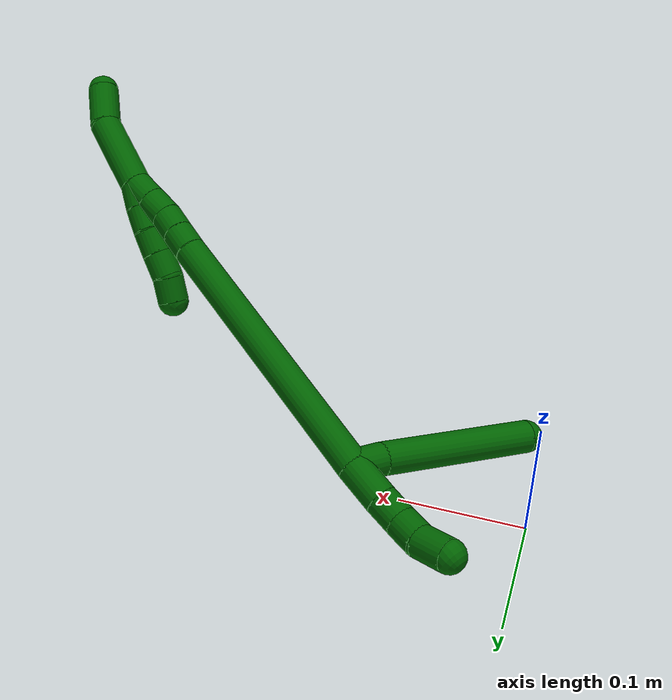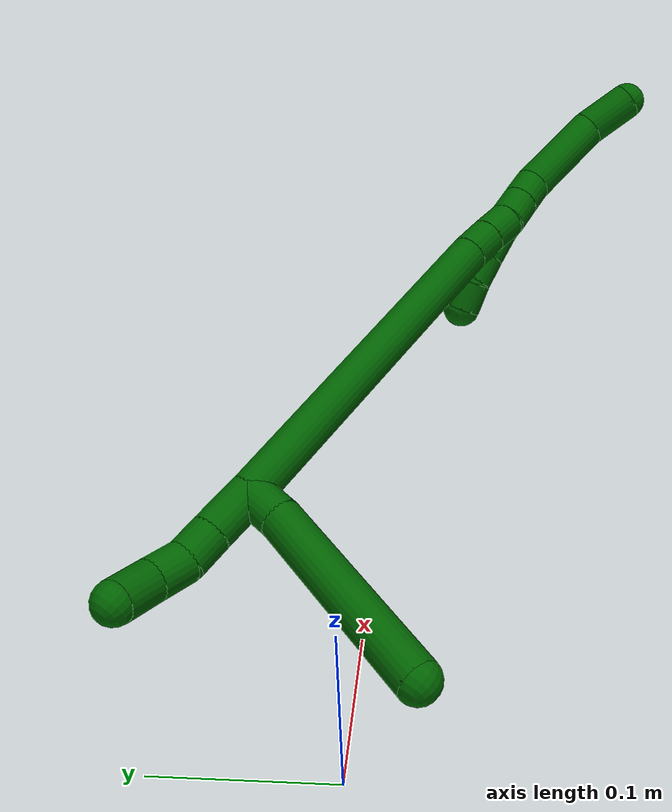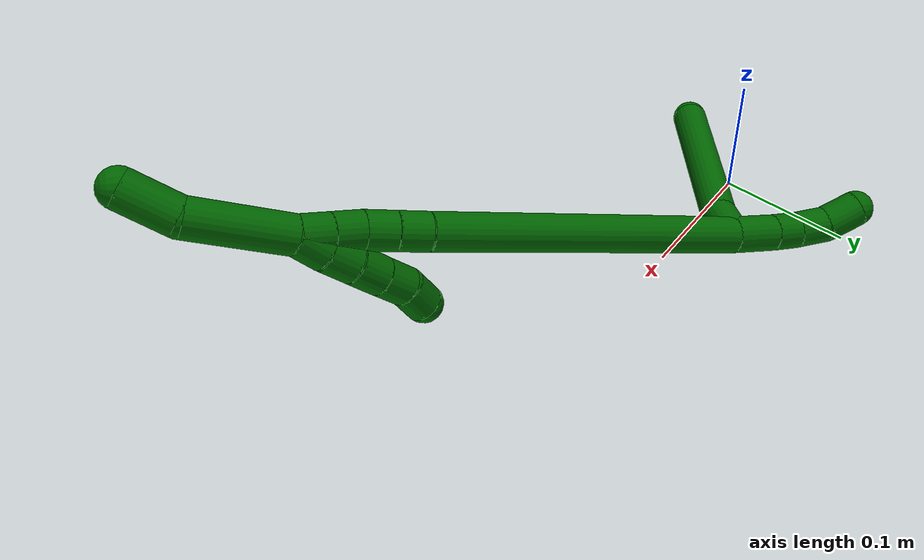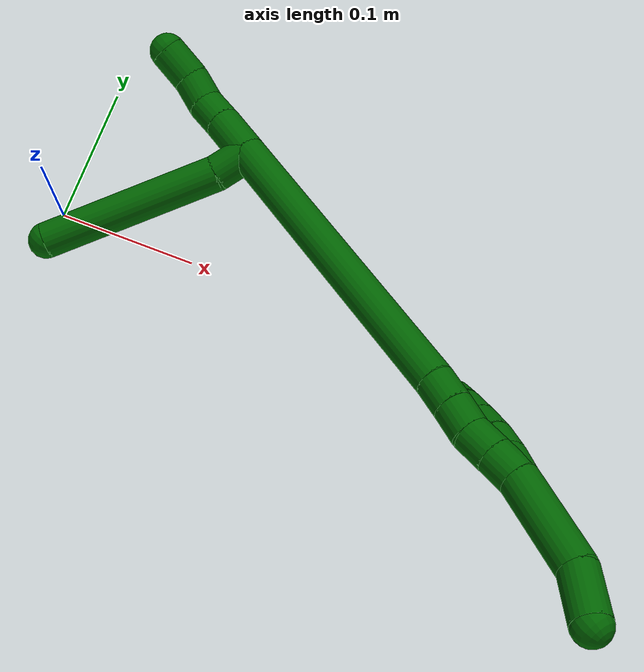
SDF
<sdf version="1.7">
 <world name="default">
  <model name="6">
   <static>0</static>
   <link name="6">
    <collision name="collision-cylinder-e_1_2_8">
     <pose>-0.005557 -0.011158 -0.002258 1.77045 -0.454118 -0.550608</pose>
     <geometry><cylinder><radius>0.0125</radius><length>0.025335</length></cylinder></geometry>
     <surface>
      <friction><ode><mu>1.16</mu><mu2>1.16</mu2><slip1>0</slip1><slip2>0</slip2></ode></friction>
      <contact><ode><kp>1e+06</kp><kd>1</kd><max_vel>0</max_vel><min_depth>0.001</min_depth></ode></contact>
     </surface>
    </collision>
    <visual name="visual-cylinder-e_1_2_8">
     <pose>-0.005557 -0.011158 -0.002258 1.77045 -0.454118 -0.550608</pose>
     <geometry><cylinder><radius>0.0125</radius><length>0.025335</length></cylinder></geometry>
     <material><ambient>0 0.392157 0.003922 1</ambient></material>
    </visual>
    <collision name="collision-cylinder-e_2_8_6">
     <pose>-0.042698 -0.072047 -0.024875 1.95937 -0.531354 -0.770352</pose>
     <geometry><cylinder><radius>0.0125</radius><length>0.124665</length></cylinder></geometry>
     <surface>
      <friction><ode><mu>1.16</mu><mu2>1.16</mu2><slip1>0</slip1><slip2>0</slip2></ode></friction>
      <contact><ode><kp>1e+06</kp><kd>1</kd><max_vel>0</max_vel><min_depth>0.001</min_depth></ode></contact>
     </surface>
    </collision>
    <visual name="visual-cylinder-e_2_8_6">
     <pose>-0.042698 -0.072047 -0.024875 1.95937 -0.531354 -0.770352</pose>
     <geometry><cylinder><radius>0.0125</radius><length>0.124665</length></cylinder></geometry>
     <material><ambient>0 0.392157 0.003922 1</ambient></material>
    </visual>
    <collision name="collision-cylinder-e_1_2_9">
     <pose>-0.000419 0.000905 -0.01598 -3.08504 -0.026201 0.867616</pose>
     <geometry><cylinder><radius>0.0125</radius><length>0.032022</length></cylinder></geometry>
     <surface>
      <friction><ode><mu>1.16</mu><mu2>1.16</mu2><slip1>0</slip1><slip2>0</slip2></ode></friction>
      <contact><ode><kp>1e+06</kp><kd>1</kd><max_vel>0</max_vel><min_depth>0.001</min_depth></ode></contact>
     </surface>
    </collision>
    <visual name="visual-cylinder-e_1_2_9">
     <pose>-0.000419 0.000905 -0.01598 -3.08504 -0.026201 0.867616</pose>
     <geometry><cylinder><radius>0.0125</radius><length>0.032022</length></cylinder></geometry>
     <material><ambient>0 0.392157 0.003922 1</ambient></material>
    </visual>
    <collision name="collision-cylinder-e_2_9_10">
     <pose>-0.001538 0.002211 -0.042366 -3.10301 -0.066979 2.09656</pose>
     <geometry><cylinder><radius>0.0125</radius><length>0.020875</length></cylinder></geometry>
     <surface>
      <friction><ode><mu>1.16</mu><mu2>1.16</mu2><slip1>0</slip1><slip2>0</slip2></ode></friction>
      <contact><ode><kp>1e+06</kp><kd>1</kd><max_vel>0</max_vel><min_depth>0.001</min_depth></ode></contact>
     </surface>
    </collision>
    <visual name="visual-cylinder-e_2_9_10">
     <pose>-0.001538 0.002211 -0.042366 -3.10301 -0.066979 2.09656</pose>
     <geometry><cylinder><radius>0.0125</radius><length>0.020875</length></cylinder></geometry>
     <material><ambient>0 0.392157 0.003922 1</ambient></material>
    </visual>
    <collision name="collision-cylinder-e_3_10_11">
     <pose>-0.004413 0.005872 -0.062899 -2.83021 -0.201852 1.14598</pose>
     <geometry><cylinder><radius>0.0125</radius><length>0.021717</length></cylinder></geometry>
     <surface>
      <friction><ode><mu>1.16</mu><mu2>1.16</mu2><slip1>0</slip1><slip2>0</slip2></ode></friction>
      <contact><ode><kp>1e+06</kp><kd>1</kd><max_vel>0</max_vel><min_depth>0.001</min_depth></ode></contact>
     </surface>
    </collision>
    <visual name="visual-cylinder-e_3_10_11">
     <pose>-0.004413 0.005872 -0.062899 -2.83021 -0.201852 1.14598</pose>
     <geometry><cylinder><radius>0.0125</radius><length>0.021717</length></cylinder></geometry>
     <material><ambient>0 0.392157 0.003922 1</ambient></material>
    </visual>
    <collision name="collision-cylinder-e_4_11_5">
     <pose>-0.012327 0.012059 -0.083963 -2.88006 -0.469014 2.13512</pose>
     <geometry><cylinder><radius>0.0125</radius><length>0.025386</length></cylinder></geometry>
     <surface>
      <friction><ode><mu>1.16</mu><mu2>1.16</mu2><slip1>0</slip1><slip2>0</slip2></ode></friction>
      <contact><ode><kp>1e+06</kp><kd>1</kd><max_vel>0</max_vel><min_depth>0.001</min_depth></ode></contact>
     </surface>
    </collision>
    <visual name="visual-cylinder-e_4_11_5">
     <pose>-0.012327 0.012059 -0.083963 -2.88006 -0.469014 2.13512</pose>
     <geometry><cylinder><radius>0.0125</radius><length>0.025386</length></cylinder></geometry>
     <material><ambient>0 0.392157 0.003922 1</ambient></material>
    </visual>
    <collision name="collision-cylinder-e_1_2_12">
     <pose>-0.003746 -0.003416 0.109653 0.031142 -0.034131 -0.000532</pose>
     <geometry><cylinder><radius>0.0125</radius><length>0.219539</length></cylinder></geometry>
     <surface>
      <friction><ode><mu>1.16</mu><mu2>1.16</mu2><slip1>0</slip1><slip2>0</slip2></ode></friction>
      <contact><ode><kp>1e+06</kp><kd>1</kd><max_vel>0</max_vel><min_depth>0.001</min_depth></ode></contact>
     </surface>
    </collision>
    <visual name="visual-cylinder-e_1_2_12">
     <pose>-0.003746 -0.003416 0.109653 0.031142 -0.034131 -0.000532</pose>
     <geometry><cylinder><radius>0.0125</radius><length>0.219539</length></cylinder></geometry>
     <material><ambient>0 0.392157 0.003922 1</ambient></material>
    </visual>
    <collision name="collision-cylinder-e_2_12_13">
     <pose>-0.007861 -0.007866 0.229323 0.102896 -0.036681 -0.001889</pose>
     <geometry><cylinder><radius>0.0125</radius><length>0.020155</length></cylinder></geometry>
     <surface>
      <friction><ode><mu>1.16</mu><mu2>1.16</mu2><slip1>0</slip1><slip2>0</slip2></ode></friction>
      <contact><ode><kp>1e+06</kp><kd>1</kd><max_vel>0</max_vel><min_depth>0.001</min_depth></ode></contact>
     </surface>
    </collision>
    <visual name="visual-cylinder-e_2_12_13">
     <pose>-0.007861 -0.007866 0.229323 0.102896 -0.036681 -0.001889</pose>
     <geometry><cylinder><radius>0.0125</radius><length>0.020155</length></cylinder></geometry>
     <material><ambient>0 0.392157 0.003922 1</ambient></material>
    </visual>
    <collision name="collision-cylinder-e_3_13_14">
     <pose>-0.008582 -0.01025 0.249343 0.134095 -0.034756 -0.002334</pose>
     <geometry><cylinder><radius>0.0125</radius><length>0.0202</length></cylinder></geometry>
     <surface>
      <friction><ode><mu>1.16</mu><mu2>1.16</mu2><slip1>0</slip1><slip2>0</slip2></ode></friction>
      <contact><ode><kp>1e+06</kp><kd>1</kd><max_vel>0</max_vel><min_depth>0.001</min_depth></ode></contact>
     </surface>
    </collision>
    <visual name="visual-cylinder-e_3_13_14">
     <pose>-0.008582 -0.01025 0.249343 0.134095 -0.034756 -0.002334</pose>
     <geometry><cylinder><radius>0.0125</radius><length>0.0202</length></cylinder></geometry>
     <material><ambient>0 0.392157 0.003922 1</ambient></material>
    </visual>
    <collision name="collision-cylinder-e_4_14_15">
     <pose>-0.008544 -0.010951 0.269357 -0.064666 0.038778 -0.001254</pose>
     <geometry><cylinder><radius>0.0125</radius><length>0.02008</length></cylinder></geometry>
     <surface>
      <friction><ode><mu>1.16</mu><mu2>1.16</mu2><slip1>0</slip1><slip2>0</slip2></ode></friction>
      <contact><ode><kp>1e+06</kp><kd>1</kd><max_vel>0</max_vel><min_depth>0.001</min_depth></ode></contact>
     </surface>
    </collision>
    <visual name="visual-cylinder-e_4_14_15">
     <pose>-0.008544 -0.010951 0.269357 -0.064666 0.038778 -0.001254</pose>
     <geometry><cylinder><radius>0.0125</radius><length>0.02008</length></cylinder></geometry>
     <material><ambient>0 0.392157 0.003922 1</ambient></material>
    </visual>
    <collision name="collision-cylinder-e_5_15_1">
     <pose>-0.007781 -0.009724 0.289358 -0.057863 0.037307 -0.00108</pose>
     <geometry><cylinder><radius>0.0125</radius><length>0.020027</length></cylinder></geometry>
     <surface>
      <friction><ode><mu>1.16</mu><mu2>1.16</mu2><slip1>0</slip1><slip2>0</slip2></ode></friction>
      <contact><ode><kp>1e+06</kp><kd>1</kd><max_vel>0</max_vel><min_depth>0.001</min_depth></ode></contact>
     </surface>
    </collision>
    <visual name="visual-cylinder-e_5_15_1">
     <pose>-0.007781 -0.009724 0.289358 -0.057863 0.037307 -0.00108</pose>
     <geometry><cylinder><radius>0.0125</radius><length>0.020027</length></cylinder></geometry>
     <material><ambient>0 0.392157 0.003922 1</ambient></material>
    </visual>
    <collision name="collision-cylinder-e_1_1_16">
     <pose>-0.013048 -0.011498 0.331225 0.073656 -0.174678 -0.006452</pose>
     <geometry><cylinder><radius>0.0125</radius><length>0.064916</length></cylinder></geometry>
     <surface>
      <friction><ode><mu>1.16</mu><mu2>1.16</mu2><slip1>0</slip1><slip2>0</slip2></ode></friction>
      <contact><ode><kp>1e+06</kp><kd>1</kd><max_vel>0</max_vel><min_depth>0.001</min_depth></ode></contact>
     </surface>
    </collision>
    <visual name="visual-cylinder-e_1_1_16">
     <pose>-0.013048 -0.011498 0.331225 0.073656 -0.174678 -0.006452</pose>
     <geometry><cylinder><radius>0.0125</radius><length>0.064916</length></cylinder></geometry>
     <material><ambient>0 0.392157 0.003922 1</ambient></material>
    </visual>
    <collision name="collision-cylinder-e_2_16_4">
     <pose>-0.026373 -0.018254 0.378245 0.283055 -0.453403 -0.065707</pose>
     <geometry><cylinder><radius>0.0125</radius><length>0.035084</length></cylinder></geometry>
     <surface>
      <friction><ode><mu>1.16</mu><mu2>1.16</mu2><slip1>0</slip1><slip2>0</slip2></ode></friction>
      <contact><ode><kp>1e+06</kp><kd>1</kd><max_vel>0</max_vel><min_depth>0.001</min_depth></ode></contact>
     </surface>
    </collision>
    <visual name="visual-cylinder-e_2_16_4">
     <pose>-0.026373 -0.018254 0.378245 0.283055 -0.453403 -0.065707</pose>
     <geometry><cylinder><radius>0.0125</radius><length>0.035084</length></cylinder></geometry>
     <material><ambient>0 0.392157 0.003922 1</ambient></material>
    </visual>
    <collision name="collision-cylinder-e_1_1_17">
     <pose>-0.00241 -0.009706 0.290704 3.0769 0.523277 2.90109</pose>
     <geometry><cylinder><radius>0.0125</radius><length>0.02</length></cylinder></geometry>
     <surface>
      <friction><ode><mu>1.16</mu><mu2>1.16</mu2><slip1>0</slip1><slip2>0</slip2></ode></friction>
      <contact><ode><kp>1e+06</kp><kd>1</kd><max_vel>0</max_vel><min_depth>0.001</min_depth></ode></contact>
     </surface>
    </collision>
    <visual name="visual-cylinder-e_1_1_17">
     <pose>-0.00241 -0.009706 0.290704 3.0769 0.523277 2.90109</pose>
     <geometry><cylinder><radius>0.0125</radius><length>0.02</length></cylinder></geometry>
     <material><ambient>0 0.392157 0.003922 1</ambient></material>
    </visual>
    <collision name="collision-cylinder-e_2_17_18">
     <pose>0.006822 -0.011154 0.273045 3.0434 0.437341 2.70638</pose>
     <geometry><cylinder><radius>0.0125</radius><length>0.02</length></cylinder></geometry>
     <surface>
      <friction><ode><mu>1.16</mu><mu2>1.16</mu2><slip1>0</slip1><slip2>0</slip2></ode></friction>
      <contact><ode><kp>1e+06</kp><kd>1</kd><max_vel>0</max_vel><min_depth>0.001</min_depth></ode></contact>
     </surface>
    </collision>
    <visual name="visual-cylinder-e_2_17_18">
     <pose>0.006822 -0.011154 0.273045 3.0434 0.437341 2.70638</pose>
     <geometry><cylinder><radius>0.0125</radius><length>0.02</length></cylinder></geometry>
     <material><ambient>0 0.392157 0.003922 1</ambient></material>
    </visual>
    <collision name="collision-cylinder-e_3_18_19">
     <pose>0.015232 -0.013909 0.255137 2.93461 0.43057 2.25476</pose>
     <geometry><cylinder><radius>0.0125</radius><length>0.02</length></cylinder></geometry>
     <surface>
      <friction><ode><mu>1.16</mu><mu2>1.16</mu2><slip1>0</slip1><slip2>0</slip2></ode></friction>
      <contact><ode><kp>1e+06</kp><kd>1</kd><max_vel>0</max_vel><min_depth>0.001</min_depth></ode></contact>
     </surface>
    </collision>
    <visual name="visual-cylinder-e_3_18_19">
     <pose>0.015232 -0.013909 0.255137 2.93461 0.43057 2.25476</pose>
     <geometry><cylinder><radius>0.0125</radius><length>0.02</length></cylinder></geometry>
     <material><ambient>0 0.392157 0.003922 1</ambient></material>
    </visual>
    <collision name="collision-cylinder-e_4_19_20">
     <pose>0.023446 -0.017896 0.237345 2.90775 0.415994 2.12591</pose>
     <geometry><cylinder><radius>0.0125</radius><length>0.02</length></cylinder></geometry>
     <surface>
      <friction><ode><mu>1.16</mu><mu2>1.16</mu2><slip1>0</slip1><slip2>0</slip2></ode></friction>
      <contact><ode><kp>1e+06</kp><kd>1</kd><max_vel>0</max_vel><min_depth>0.001</min_depth></ode></contact>
     </surface>
    </collision>
    <visual name="visual-cylinder-e_4_19_20">
     <pose>0.023446 -0.017896 0.237345 2.90775 0.415994 2.12591</pose>
     <geometry><cylinder><radius>0.0125</radius><length>0.02</length></cylinder></geometry>
     <material><ambient>0 0.392157 0.003922 1</ambient></material>
    </visual>
    <collision name="collision-cylinder-e_5_20_3">
     <pose>0.033636 -0.023041 0.221164 2.74793 0.66221 2.09028</pose>
     <geometry><cylinder><radius>0.0125</radius><length>0.02</length></cylinder></geometry>
     <surface>
      <friction><ode><mu>1.16</mu><mu2>1.16</mu2><slip1>0</slip1><slip2>0</slip2></ode></friction>
      <contact><ode><kp>1e+06</kp><kd>1</kd><max_vel>0</max_vel><min_depth>0.001</min_depth></ode></contact>
     </surface>
    </collision>
    <visual name="visual-cylinder-e_5_20_3">
     <pose>0.033636 -0.023041 0.221164 2.74793 0.66221 2.09028</pose>
     <geometry><cylinder><radius>0.0125</radius><length>0.02</length></cylinder></geometry>
     <material><ambient>0 0.392157 0.003922 1</ambient></material>
    </visual>
    <collision name="collision-sphere-3">
     <pose>0.039785 -0.026066 0.213881 0 -0 0</pose>
     <geometry><sphere><radius>0.0125</radius></sphere></geometry>
     <surface>
      <friction><ode><mu>1.16</mu><mu2>1.16</mu2><slip1>0</slip1><slip2>0</slip2></ode></friction>
      <contact><ode><kp>1e+06</kp><kd>1</kd><max_vel>0</max_vel><min_depth>0.001</min_depth></ode></contact>
     </surface>
    </collision>
    <visual name="visual-sphere-3">
     <pose>0.039785 -0.026066 0.213881 0 -0 0</pose>
     <geometry><sphere><radius>0.0125</radius></sphere></geometry>
     <material><ambient>0 0.392157 0.003922 1</ambient></material>
    </visual>
    <collision name="collision-sphere-20">
     <pose>0.027487 -0.020016 0.228447 0 -0 0</pose>
     <geometry><sphere><radius>0.0125</radius></sphere></geometry>
     <surface>
      <friction><ode><mu>1.16</mu><mu2>1.16</mu2><slip1>0</slip1><slip2>0</slip2></ode></friction>
      <contact><ode><kp>1e+06</kp><kd>1</kd><max_vel>0</max_vel><min_depth>0.001</min_depth></ode></contact>
     </surface>
    </collision>
    <visual name="visual-sphere-20">
     <pose>0.027487 -0.020016 0.228447 0 -0 0</pose>
     <geometry><sphere><radius>0.0125</radius></sphere></geometry>
     <material><ambient>0 0.392157 0.003922 1</ambient></material>
    </visual>
    <collision name="collision-sphere-19">
     <pose>0.019405 -0.015777 0.246243 0 -0 0</pose>
     <geometry><sphere><radius>0.0125</radius></sphere></geometry>
     <surface>
      <friction><ode><mu>1.16</mu><mu2>1.16</mu2><slip1>0</slip1><slip2>0</slip2></ode></friction>
      <contact><ode><kp>1e+06</kp><kd>1</kd><max_vel>0</max_vel><min_depth>0.001</min_depth></ode></contact>
     </surface>
    </collision>
    <visual name="visual-sphere-19">
     <pose>0.019405 -0.015777 0.246243 0 -0 0</pose>
     <geometry><sphere><radius>0.0125</radius></sphere></geometry>
     <material><ambient>0 0.392157 0.003922 1</ambient></material>
    </visual>
    <collision name="collision-sphere-11">
     <pose>-0.00659 0.009131 -0.073025 0 -0 0</pose>
     <geometry><sphere><radius>0.0125</radius></sphere></geometry>
     <surface>
      <friction><ode><mu>1.16</mu><mu2>1.16</mu2><slip1>0</slip1><slip2>0</slip2></ode></friction>
      <contact><ode><kp>1e+06</kp><kd>1</kd><max_vel>0</max_vel><min_depth>0.001</min_depth></ode></contact>
     </surface>
    </collision>
    <visual name="visual-sphere-11">
     <pose>-0.00659 0.009131 -0.073025 0 -0 0</pose>
     <geometry><sphere><radius>0.0125</radius></sphere></geometry>
     <material><ambient>0 0.392157 0.003922 1</ambient></material>
    </visual>
    <collision name="collision-sphere-10">
     <pose>-0.002236 0.002613 -0.052773 0 -0 0</pose>
     <geometry><sphere><radius>0.0125</radius></sphere></geometry>
     <surface>
      <friction><ode><mu>1.16</mu><mu2>1.16</mu2><slip1>0</slip1><slip2>0</slip2></ode></friction>
      <contact><ode><kp>1e+06</kp><kd>1</kd><max_vel>0</max_vel><min_depth>0.001</min_depth></ode></contact>
     </surface>
    </collision>
    <visual name="visual-sphere-10">
     <pose>-0.002236 0.002613 -0.052773 0 -0 0</pose>
     <geometry><sphere><radius>0.0125</radius></sphere></geometry>
     <material><ambient>0 0.392157 0.003922 1</ambient></material>
    </visual>
    <collision name="collision-sphere-6">
     <pose>-0.074282 -0.121779 -0.045235 0 -0 0</pose>
     <geometry><sphere><radius>0.0125</radius></sphere></geometry>
     <surface>
      <friction><ode><mu>1.16</mu><mu2>1.16</mu2><slip1>0</slip1><slip2>0</slip2></ode></friction>
      <contact><ode><kp>1e+06</kp><kd>1</kd><max_vel>0</max_vel><min_depth>0.001</min_depth></ode></contact>
     </surface>
    </collision>
    <visual name="visual-sphere-6">
     <pose>-0.074282 -0.121779 -0.045235 0 -0 0</pose>
     <geometry><sphere><radius>0.0125</radius></sphere></geometry>
     <material><ambient>0 0.392157 0.003922 1</ambient></material>
    </visual>
    <collision name="collision-sphere-9">
     <pose>-0.000839 0.001809 -0.03196 0 -0 0</pose>
     <geometry><sphere><radius>0.0125</radius></sphere></geometry>
     <surface>
      <friction><ode><mu>1.16</mu><mu2>1.16</mu2><slip1>0</slip1><slip2>0</slip2></ode></friction>
      <contact><ode><kp>1e+06</kp><kd>1</kd><max_vel>0</max_vel><min_depth>0.001</min_depth></ode></contact>
     </surface>
    </collision>
    <visual name="visual-sphere-9">
     <pose>-0.000839 0.001809 -0.03196 0 -0 0</pose>
     <geometry><sphere><radius>0.0125</radius></sphere></geometry>
     <material><ambient>0 0.392157 0.003922 1</ambient></material>
    </visual>
    <collision name="collision-sphere-2">
     <geometry><sphere><radius>0.0125</radius></sphere></geometry>
     <surface>
      <friction><ode><mu>1.16</mu><mu2>1.16</mu2><slip1>0</slip1><slip2>0</slip2></ode></friction>
      <contact><ode><kp>1e+06</kp><kd>1</kd><max_vel>0</max_vel><min_depth>0.001</min_depth></ode></contact>
     </surface>
    </collision>
    <visual name="visual-sphere-2">
     <geometry><sphere><radius>0.0125</radius></sphere></geometry>
     <material><ambient>0 0.392157 0.003922 1</ambient></material>
    </visual>
    <collision name="collision-sphere-8">
     <pose>-0.011114 -0.022315 -0.004515 0 -0 0</pose>
     <geometry><sphere><radius>0.0125</radius></sphere></geometry>
     <surface>
      <friction><ode><mu>1.16</mu><mu2>1.16</mu2><slip1>0</slip1><slip2>0</slip2></ode></friction>
      <contact><ode><kp>1e+06</kp><kd>1</kd><max_vel>0</max_vel><min_depth>0.001</min_depth></ode></contact>
     </surface>
    </collision>
    <visual name="visual-sphere-8">
     <pose>-0.011114 -0.022315 -0.004515 0 -0 0</pose>
     <geometry><sphere><radius>0.0125</radius></sphere></geometry>
     <material><ambient>0 0.392157 0.003922 1</ambient></material>
    </visual>
    <collision name="collision-sphere-5">
     <pose>-0.018065 0.014986 -0.0949 0 -0 0</pose>
     <geometry><sphere><radius>0.0125</radius></sphere></geometry>
     <surface>
      <friction><ode><mu>1.16</mu><mu2>1.16</mu2><slip1>0</slip1><slip2>0</slip2></ode></friction>
      <contact><ode><kp>1e+06</kp><kd>1</kd><max_vel>0</max_vel><min_depth>0.001</min_depth></ode></contact>
     </surface>
    </collision>
    <visual name="visual-sphere-5">
     <pose>-0.018065 0.014986 -0.0949 0 -0 0</pose>
     <geometry><sphere><radius>0.0125</radius></sphere></geometry>
     <material><ambient>0 0.392157 0.003922 1</ambient></material>
    </visual>
    <collision name="collision-sphere-12">
     <pose>-0.007492 -0.006832 0.219305 0 -0 0</pose>
     <geometry><sphere><radius>0.0125</radius></sphere></geometry>
     <surface>
      <friction><ode><mu>1.16</mu><mu2>1.16</mu2><slip1>0</slip1><slip2>0</slip2></ode></friction>
      <contact><ode><kp>1e+06</kp><kd>1</kd><max_vel>0</max_vel><min_depth>0.001</min_depth></ode></contact>
     </surface>
    </collision>
    <visual name="visual-sphere-12">
     <pose>-0.007492 -0.006832 0.219305 0 -0 0</pose>
     <geometry><sphere><radius>0.0125</radius></sphere></geometry>
     <material><ambient>0 0.392157 0.003922 1</ambient></material>
    </visual>
    <collision name="collision-sphere-13">
     <pose>-0.008231 -0.008901 0.23934 0 -0 0</pose>
     <geometry><sphere><radius>0.0125</radius></sphere></geometry>
     <surface>
      <friction><ode><mu>1.16</mu><mu2>1.16</mu2><slip1>0</slip1><slip2>0</slip2></ode></friction>
      <contact><ode><kp>1e+06</kp><kd>1</kd><max_vel>0</max_vel><min_depth>0.001</min_depth></ode></contact>
     </surface>
    </collision>
    <visual name="visual-sphere-13">
     <pose>-0.008231 -0.008901 0.23934 0 -0 0</pose>
     <geometry><sphere><radius>0.0125</radius></sphere></geometry>
     <material><ambient>0 0.392157 0.003922 1</ambient></material>
    </visual>
    <collision name="collision-sphere-14">
     <pose>-0.008933 -0.0116 0.259346 0 -0 0</pose>
     <geometry><sphere><radius>0.0125</radius></sphere></geometry>
     <surface>
      <friction><ode><mu>1.16</mu><mu2>1.16</mu2><slip1>0</slip1><slip2>0</slip2></ode></friction>
      <contact><ode><kp>1e+06</kp><kd>1</kd><max_vel>0</max_vel><min_depth>0.001</min_depth></ode></contact>
     </surface>
    </collision>
    <visual name="visual-sphere-14">
     <pose>-0.008933 -0.0116 0.259346 0 -0 0</pose>
     <geometry><sphere><radius>0.0125</radius></sphere></geometry>
     <material><ambient>0 0.392157 0.003922 1</ambient></material>
    </visual>
    <collision name="collision-sphere-15">
     <pose>-0.008154 -0.010303 0.279369 0 -0 0</pose>
     <geometry><sphere><radius>0.0125</radius></sphere></geometry>
     <surface>
      <friction><ode><mu>1.16</mu><mu2>1.16</mu2><slip1>0</slip1><slip2>0</slip2></ode></friction>
      <contact><ode><kp>1e+06</kp><kd>1</kd><max_vel>0</max_vel><min_depth>0.001</min_depth></ode></contact>
     </surface>
    </collision>
    <visual name="visual-sphere-15">
     <pose>-0.008154 -0.010303 0.279369 0 -0 0</pose>
     <geometry><sphere><radius>0.0125</radius></sphere></geometry>
     <material><ambient>0 0.392157 0.003922 1</ambient></material>
    </visual>
    <collision name="collision-sphere-1">
     <pose>-0.007407 -0.009146 0.299348 0 -0 0</pose>
     <geometry><sphere><radius>0.0125</radius></sphere></geometry>
     <surface>
      <friction><ode><mu>1.16</mu><mu2>1.16</mu2><slip1>0</slip1><slip2>0</slip2></ode></friction>
      <contact><ode><kp>1e+06</kp><kd>1</kd><max_vel>0</max_vel><min_depth>0.001</min_depth></ode></contact>
     </surface>
    </collision>
    <visual name="visual-sphere-1">
     <pose>-0.007407 -0.009146 0.299348 0 -0 0</pose>
     <geometry><sphere><radius>0.0125</radius></sphere></geometry>
     <material><ambient>0 0.392157 0.003922 1</ambient></material>
    </visual>
    <collision name="collision-sphere-18">
     <pose>0.011058 -0.012042 0.26403 0 -0 0</pose>
     <geometry><sphere><radius>0.0125</radius></sphere></geometry>
     <surface>
      <friction><ode><mu>1.16</mu><mu2>1.16</mu2><slip1>0</slip1><slip2>0</slip2></ode></friction>
      <contact><ode><kp>1e+06</kp><kd>1</kd><max_vel>0</max_vel><min_depth>0.001</min_depth></ode></contact>
     </surface>
    </collision>
    <visual name="visual-sphere-18">
     <pose>0.011058 -0.012042 0.26403 0 -0 0</pose>
     <geometry><sphere><radius>0.0125</radius></sphere></geometry>
     <material><ambient>0 0.392157 0.003922 1</ambient></material>
    </visual>
    <collision name="collision-sphere-16">
     <pose>-0.018689 -0.01385 0.363102 0 -0 0</pose>
     <geometry><sphere><radius>0.0125</radius></sphere></geometry>
     <surface>
      <friction><ode><mu>1.16</mu><mu2>1.16</mu2><slip1>0</slip1><slip2>0</slip2></ode></friction>
      <contact><ode><kp>1e+06</kp><kd>1</kd><max_vel>0</max_vel><min_depth>0.001</min_depth></ode></contact>
     </surface>
    </collision>
    <visual name="visual-sphere-16">
     <pose>-0.018689 -0.01385 0.363102 0 -0 0</pose>
     <geometry><sphere><radius>0.0125</radius></sphere></geometry>
     <material><ambient>0 0.392157 0.003922 1</ambient></material>
    </visual>
    <collision name="collision-sphere-4">
     <pose>-0.034057 -0.022659 0.393387 0 -0 0</pose>
     <geometry><sphere><radius>0.0125</radius></sphere></geometry>
     <surface>
      <friction><ode><mu>1.16</mu><mu2>1.16</mu2><slip1>0</slip1><slip2>0</slip2></ode></friction>
      <contact><ode><kp>1e+06</kp><kd>1</kd><max_vel>0</max_vel><min_depth>0.001</min_depth></ode></contact>
     </surface>
    </collision>
    <visual name="visual-sphere-4">
     <pose>-0.034057 -0.022659 0.393387 0 -0 0</pose>
     <geometry><sphere><radius>0.0125</radius></sphere></geometry>
     <material><ambient>0 0.392157 0.003922 1</ambient></material>
    </visual>
    <collision name="collision-sphere-17">
     <pose>0.002587 -0.010266 0.28206 0 -0 0</pose>
     <geometry><sphere><radius>0.0125</radius></sphere></geometry>
     <surface>
      <friction><ode><mu>1.16</mu><mu2>1.16</mu2><slip1>0</slip1><slip2>0</slip2></ode></friction>
      <contact><ode><kp>1e+06</kp><kd>1</kd><max_vel>0</max_vel><min_depth>0.001</min_depth></ode></contact>
     </surface>
    </collision>
    <visual name="visual-sphere-17">
     <pose>0.002587 -0.010266 0.28206 0 -0 0</pose>
     <geometry><sphere><radius>0.0125</radius></sphere></geometry>
     <material><ambient>0 0.392157 0.003922 1</ambient></material>
    </visual>
    <inertial>
     <pose>-0.010183 -0.017582 0.129604 0 -0 0</pose>
     <mass>0.75</mass>
     <inertia>
      <ixx>0.00093</ixx>
      <ixy>0</ixy>
      <ixz>0</ixz>
      <iyy>0.000838</iyy>
      <iyz>0</iyz>
      <izz>0.000299</izz>
     </inertia>
    </inertial>
   </link>
   <pose>0.121666 0.062916 0.087124 1.0381 0.866731 0.582615</pose>
  </model>
 </world>
</sdf>
